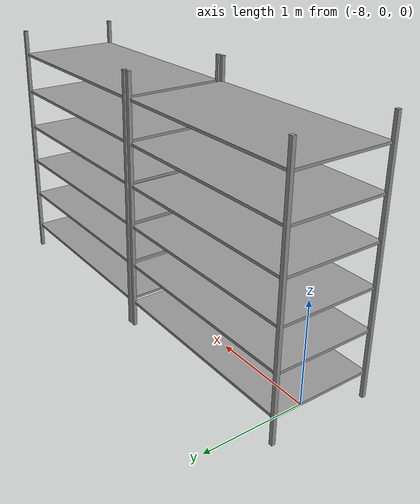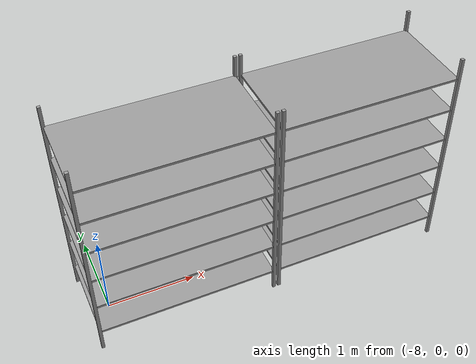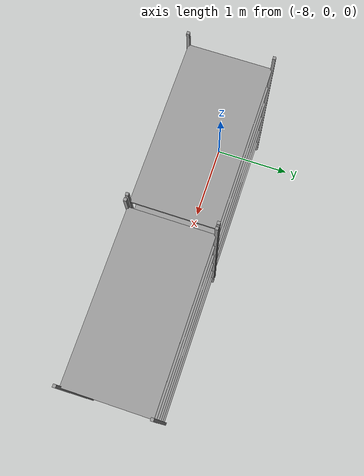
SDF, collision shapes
<sdf version="1.6">
 <model name="shelves">
  <model name="shelf_1">
   <link name="link_1">
    <inertial>
     <mass>1</mass>
     <inertia>
      <ixx>0.166667</ixx>
      <ixy>0</ixy>
      <ixz>0</ixz>
      <iyy>0.166667</iyy>
      <iyz>0</iyz>
      <izz>0.166667</izz>
     </inertia>
    </inertial>
    <visual name="ModelPreview_2::link_1::visual_6">
     <pose>1 0.5 0 0 -0 0</pose>
     <geometry><mesh><uri>model://shelf/model/2-5mDirek.stl</uri><scale>0.001 0.001 0.001</scale></mesh></geometry>
     <material>
      <lighting>1</lighting>
      <script><uri>file://media/materials/scripts/gazebo.material</uri><name>Gazebo/Grey</name></script>
      <shader type="vertex"><normal_map>__default__</normal_map></shader>
      <ambient>0.3 0.3 0.3 1</ambient>
      <diffuse>0.7 0.7 0.7 1</diffuse>
      <specular>0.01 0.01 0.01 1</specular>
      <emissive>0 0 0 1</emissive>
     </material>
    </visual>
    <visual name="ModelPreview_2::link_1::visual_7">
     <pose>-1 0.5 0 0 -0 0</pose>
     <geometry><mesh><uri>model://shelf/model/2-5mDirek.stl</uri><scale>0.001 0.001 0.001</scale></mesh></geometry>
     <material>
      <lighting>1</lighting>
      <script><uri>file://media/materials/scripts/gazebo.material</uri><name>Gazebo/Grey</name></script>
      <shader type="vertex"><normal_map>__default__</normal_map></shader>
      <ambient>0.3 0.3 0.3 1</ambient>
      <diffuse>0.7 0.7 0.7 1</diffuse>
      <specular>0.01 0.01 0.01 1</specular>
      <emissive>0 0 0 1</emissive>
     </material>
    </visual>
    <visual name="ModelPreview_2::link_1::visual_4">
     <pose>0 0 1.85 0 -0 0</pose>
     <geometry><box><size>2 1 0.025</size></box></geometry>
     <material>
      <lighting>1</lighting>
      <script><uri>file://media/materials/scripts/gazebo.material</uri><name>Gazebo/WoodFloor</name></script>
      <shader type="vertex"><normal_map>__default__</normal_map></shader>
      <ambient>0.3 0.3 0.3 1</ambient>
      <diffuse>0.7 0.7 0.7 1</diffuse>
      <specular>0.01 0.01 0.01 1</specular>
      <emissive>0 0 0 1</emissive>
     </material>
    </visual>
    <visual name="ModelPreview_2::link_1::visual_5">
     <pose>0 0 2.25 0 -0 0</pose>
     <geometry><box><size>2 1 0.025</size></box></geometry>
     <material>
      <lighting>1</lighting>
      <script><uri>file://media/materials/scripts/gazebo.material</uri><name>Gazebo/WoodFloor</name></script>
      <shader type="vertex"><normal_map>__default__</normal_map></shader>
      <ambient>0.3 0.3 0.3 1</ambient>
      <diffuse>0.7 0.7 0.7 1</diffuse>
      <specular>0.01 0.01 0.01 1</specular>
      <emissive>0 0 0 1</emissive>
     </material>
    </visual>
    <visual name="ModelPreview_2::link_1::visual_3">
     <pose>0 0 1.45 0 -0 0</pose>
     <geometry><box><size>2 1 0.025</size></box></geometry>
     <material>
      <lighting>1</lighting>
      <script><uri>file://media/materials/scripts/gazebo.material</uri><name>Gazebo/WoodFloor</name></script>
      <shader type="vertex"><normal_map>__default__</normal_map></shader>
      <ambient>0.3 0.3 0.3 1</ambient>
      <diffuse>0.7 0.7 0.7 1</diffuse>
      <specular>0.01 0.01 0.01 1</specular>
      <emissive>0 0 0 1</emissive>
     </material>
    </visual>
    <visual name="ModelPreview_2::link_1::visual_1">
     <pose>0 0 0.65 0 -0 0</pose>
     <geometry><box><size>2 1 0.025</size></box></geometry>
     <material>
      <lighting>1</lighting>
      <script><uri>file://media/materials/scripts/gazebo.material</uri><name>Gazebo/WoodFloor</name></script>
      <shader type="vertex"><normal_map>__default__</normal_map></shader>
      <ambient>0.3 0.3 0.3 1</ambient>
      <diffuse>0.7 0.7 0.7 1</diffuse>
      <specular>0.01 0.01 0.01 1</specular>
      <emissive>0 0 0 1</emissive>
     </material>
    </visual>
    <visual name="visual">
     <pose>0 0 0.25 0 -0 0</pose>
     <geometry><box><size>2 1 0.025</size></box></geometry>
     <material>
      <lighting>1</lighting>
      <script><uri>file://media/materials/scripts/gazebo.material</uri><name>Gazebo/WoodFloor</name></script>
      <shader type="vertex"><normal_map>__default__</normal_map></shader>
      <ambient>0.3 0.3 0.3 1</ambient>
      <diffuse>0.7 0.7 0.7 1</diffuse>
      <specular>0.01 0.01 0.01 1</specular>
      <emissive>0 0 0 1</emissive>
     </material>
    </visual>
    <visual name="ModelPreview_2::link_1::visual_2">
     <pose>0 0 1.05 0 -0 0</pose>
     <geometry><box><size>2 1 0.025</size></box></geometry>
     <material>
      <lighting>1</lighting>
      <script><uri>file://media/materials/scripts/gazebo.material</uri><name>Gazebo/WoodFloor</name></script>
      <shader type="vertex"><normal_map>__default__</normal_map></shader>
      <ambient>0.3 0.3 0.3 1</ambient>
      <diffuse>0.7 0.7 0.7 1</diffuse>
      <specular>0.01 0.01 0.01 1</specular>
      <emissive>0 0 0 1</emissive>
     </material>
    </visual>
    <visual name="ModelPreview_2::link_1::visual_8">
     <pose>1 -0.5 0 0 -0 0</pose>
     <geometry><mesh><uri>model://shelf/model/2-5mDirek.stl</uri><scale>0.001 0.001 0.001</scale></mesh></geometry>
     <material>
      <lighting>1</lighting>
      <script><uri>file://media/materials/scripts/gazebo.material</uri><name>Gazebo/Grey</name></script>
      <shader type="vertex"><normal_map>__default__</normal_map></shader>
      <ambient>0.3 0.3 0.3 1</ambient>
      <diffuse>0.7 0.7 0.7 1</diffuse>
      <specular>0.01 0.01 0.01 1</specular>
      <emissive>0 0 0 1</emissive>
     </material>
    </visual>
    <visual name="ModelPreview_2::link_1::visual_9">
     <pose>-1 -0.5 0 0 -0 0</pose>
     <geometry><mesh><uri>model://shelf/model/2-5mDirek.stl</uri><scale>0.001 0.001 0.001</scale></mesh></geometry>
     <material>
      <lighting>1</lighting>
      <script><uri>file://media/materials/scripts/gazebo.material</uri><name>Gazebo/Grey</name></script>
      <shader type="vertex"><normal_map>__default__</normal_map></shader>
      <ambient>0.3 0.3 0.3 1</ambient>
      <diffuse>0.7 0.7 0.7 1</diffuse>
      <specular>0.01 0.01 0.01 1</specular>
      <emissive>0 0 0 1</emissive>
     </material>
    </visual>
    <collision name="collision_7">
     <pose>1 -0.5 1.25 0 -0 0</pose>
     <geometry><box><size>0.035 0.035 2.5</size></box></geometry>
     <surface>
      <friction>
       <ode><mu>1</mu><mu2>1</mu2><fdir1>0 0 0</fdir1><slip1>0</slip1><slip2>0</slip2></ode>
       <torsional>
        <coefficient>1</coefficient>
        <patch_radius>0</patch_radius>
        <surface_radius>0</surface_radius>
        <use_patch_radius>1</use_patch_radius>
        <ode><slip>0</slip></ode>
       </torsional>
      </friction>
      <bounce><restitution_coefficient>0</restitution_coefficient><threshold>1e+06</threshold></bounce>
      <contact>
       <collide_without_contact>0</collide_without_contact>
       <collide_without_contact_bitmask>1</collide_without_contact_bitmask>
       <collide_bitmask>1</collide_bitmask>
       <ode>
        <soft_cfm>0</soft_cfm>
        <soft_erp>0.2</soft_erp>
        <kp>1e+13</kp>
        <kd>1</kd>
        <max_vel>0.01</max_vel>
        <min_depth>0</min_depth>
       </ode>
       <bullet>
        <split_impulse>1</split_impulse>
        <split_impulse_penetration_threshold>-0.01</split_impulse_penetration_threshold>
        <soft_cfm>0</soft_cfm>
        <soft_erp>0.2</soft_erp>
        <kp>1e+13</kp>
        <kd>1</kd>
       </bullet>
      </contact>
     </surface>
    </collision>
    <collision name="collision_6">
     <pose>1 0.5 1.25 0 -0 0</pose>
     <geometry><box><size>0.035 0.035 2.5</size></box></geometry>
     <surface>
      <friction>
       <ode><mu>1</mu><mu2>1</mu2><fdir1>0 0 0</fdir1><slip1>0</slip1><slip2>0</slip2></ode>
       <torsional>
        <coefficient>1</coefficient>
        <patch_radius>0</patch_radius>
        <surface_radius>0</surface_radius>
        <use_patch_radius>1</use_patch_radius>
        <ode><slip>0</slip></ode>
       </torsional>
      </friction>
      <bounce><restitution_coefficient>0</restitution_coefficient><threshold>1e+06</threshold></bounce>
      <contact>
       <collide_without_contact>0</collide_without_contact>
       <collide_without_contact_bitmask>1</collide_without_contact_bitmask>
       <collide_bitmask>1</collide_bitmask>
       <ode>
        <soft_cfm>0</soft_cfm>
        <soft_erp>0.2</soft_erp>
        <kp>1e+13</kp>
        <kd>1</kd>
        <max_vel>0.01</max_vel>
        <min_depth>0</min_depth>
       </ode>
       <bullet>
        <split_impulse>1</split_impulse>
        <split_impulse_penetration_threshold>-0.01</split_impulse_penetration_threshold>
        <soft_cfm>0</soft_cfm>
        <soft_erp>0.2</soft_erp>
        <kp>1e+13</kp>
        <kd>1</kd>
       </bullet>
      </contact>
     </surface>
    </collision>
    <collision name="collision_2">
     <pose>0 0 1.05 0 -0 0</pose>
     <geometry><box><size>2 1 0.025</size></box></geometry>
     <surface>
      <friction>
       <ode><mu>1</mu><mu2>1</mu2><fdir1>0 0 0</fdir1><slip1>0</slip1><slip2>0</slip2></ode>
       <torsional>
        <coefficient>1</coefficient>
        <patch_radius>0</patch_radius>
        <surface_radius>0</surface_radius>
        <use_patch_radius>1</use_patch_radius>
        <ode><slip>0</slip></ode>
       </torsional>
      </friction>
      <bounce><restitution_coefficient>0</restitution_coefficient><threshold>1e+06</threshold></bounce>
      <contact>
       <collide_without_contact>0</collide_without_contact>
       <collide_without_contact_bitmask>1</collide_without_contact_bitmask>
       <collide_bitmask>1</collide_bitmask>
       <ode>
        <soft_cfm>0</soft_cfm>
        <soft_erp>0.2</soft_erp>
        <kp>1e+13</kp>
        <kd>1</kd>
        <max_vel>0.01</max_vel>
        <min_depth>0</min_depth>
       </ode>
       <bullet>
        <split_impulse>1</split_impulse>
        <split_impulse_penetration_threshold>-0.01</split_impulse_penetration_threshold>
        <soft_cfm>0</soft_cfm>
        <soft_erp>0.2</soft_erp>
        <kp>1e+13</kp>
        <kd>1</kd>
       </bullet>
      </contact>
     </surface>
    </collision>
    <collision name="collision_8">
     <pose>-1 0.5 1.25 0 -0 0</pose>
     <geometry><box><size>0.035 0.035 2.5</size></box></geometry>
     <surface>
      <friction>
       <ode><mu>1</mu><mu2>1</mu2><fdir1>0 0 0</fdir1><slip1>0</slip1><slip2>0</slip2></ode>
       <torsional>
        <coefficient>1</coefficient>
        <patch_radius>0</patch_radius>
        <surface_radius>0</surface_radius>
        <use_patch_radius>1</use_patch_radius>
        <ode><slip>0</slip></ode>
       </torsional>
      </friction>
      <bounce><restitution_coefficient>0</restitution_coefficient><threshold>1e+06</threshold></bounce>
      <contact>
       <collide_without_contact>0</collide_without_contact>
       <collide_without_contact_bitmask>1</collide_without_contact_bitmask>
       <collide_bitmask>1</collide_bitmask>
       <ode>
        <soft_cfm>0</soft_cfm>
        <soft_erp>0.2</soft_erp>
        <kp>1e+13</kp>
        <kd>1</kd>
        <max_vel>0.01</max_vel>
        <min_depth>0</min_depth>
       </ode>
       <bullet>
        <split_impulse>1</split_impulse>
        <split_impulse_penetration_threshold>-0.01</split_impulse_penetration_threshold>
        <soft_cfm>0</soft_cfm>
        <soft_erp>0.2</soft_erp>
        <kp>1e+13</kp>
        <kd>1</kd>
       </bullet>
      </contact>
     </surface>
    </collision>
    <collision name="collision_4">
     <pose>0 0 1.85 0 -0 0</pose>
     <geometry><box><size>2 1 0.025</size></box></geometry>
     <surface>
      <friction>
       <ode><mu>1</mu><mu2>1</mu2><fdir1>0 0 0</fdir1><slip1>0</slip1><slip2>0</slip2></ode>
       <torsional>
        <coefficient>1</coefficient>
        <patch_radius>0</patch_radius>
        <surface_radius>0</surface_radius>
        <use_patch_radius>1</use_patch_radius>
        <ode><slip>0</slip></ode>
       </torsional>
      </friction>
      <bounce><restitution_coefficient>0</restitution_coefficient><threshold>1e+06</threshold></bounce>
      <contact>
       <collide_without_contact>0</collide_without_contact>
       <collide_without_contact_bitmask>1</collide_without_contact_bitmask>
       <collide_bitmask>1</collide_bitmask>
       <ode>
        <soft_cfm>0</soft_cfm>
        <soft_erp>0.2</soft_erp>
        <kp>1e+13</kp>
        <kd>1</kd>
        <max_vel>0.01</max_vel>
        <min_depth>0</min_depth>
       </ode>
       <bullet>
        <split_impulse>1</split_impulse>
        <split_impulse_penetration_threshold>-0.01</split_impulse_penetration_threshold>
        <soft_cfm>0</soft_cfm>
        <soft_erp>0.2</soft_erp>
        <kp>1e+13</kp>
        <kd>1</kd>
       </bullet>
      </contact>
     </surface>
    </collision>
    <collision name="collision_1">
     <pose>0 0 0.65 0 -0 0</pose>
     <geometry><box><size>2 1 0.025</size></box></geometry>
     <surface>
      <friction>
       <ode><mu>1</mu><mu2>1</mu2><fdir1>0 0 0</fdir1><slip1>0</slip1><slip2>0</slip2></ode>
       <torsional>
        <coefficient>1</coefficient>
        <patch_radius>0</patch_radius>
        <surface_radius>0</surface_radius>
        <use_patch_radius>1</use_patch_radius>
        <ode><slip>0</slip></ode>
       </torsional>
      </friction>
      <bounce><restitution_coefficient>0</restitution_coefficient><threshold>1e+06</threshold></bounce>
      <contact>
       <collide_without_contact>0</collide_without_contact>
       <collide_without_contact_bitmask>1</collide_without_contact_bitmask>
       <collide_bitmask>1</collide_bitmask>
       <ode>
        <soft_cfm>0</soft_cfm>
        <soft_erp>0.2</soft_erp>
        <kp>1e+13</kp>
        <kd>1</kd>
        <max_vel>0.01</max_vel>
        <min_depth>0</min_depth>
       </ode>
       <bullet>
        <split_impulse>1</split_impulse>
        <split_impulse_penetration_threshold>-0.01</split_impulse_penetration_threshold>
        <soft_cfm>0</soft_cfm>
        <soft_erp>0.2</soft_erp>
        <kp>1e+13</kp>
        <kd>1</kd>
       </bullet>
      </contact>
     </surface>
    </collision>
    <collision name="collision_3">
     <pose>0 0 1.45 0 -0 0</pose>
     <geometry><box><size>2 1 0.025</size></box></geometry>
     <surface>
      <friction>
       <ode><mu>1</mu><mu2>1</mu2><fdir1>0 0 0</fdir1><slip1>0</slip1><slip2>0</slip2></ode>
       <torsional>
        <coefficient>1</coefficient>
        <patch_radius>0</patch_radius>
        <surface_radius>0</surface_radius>
        <use_patch_radius>1</use_patch_radius>
        <ode><slip>0</slip></ode>
       </torsional>
      </friction>
      <bounce><restitution_coefficient>0</restitution_coefficient><threshold>1e+06</threshold></bounce>
      <contact>
       <collide_without_contact>0</collide_without_contact>
       <collide_without_contact_bitmask>1</collide_without_contact_bitmask>
       <collide_bitmask>1</collide_bitmask>
       <ode>
        <soft_cfm>0</soft_cfm>
        <soft_erp>0.2</soft_erp>
        <kp>1e+13</kp>
        <kd>1</kd>
        <max_vel>0.01</max_vel>
        <min_depth>0</min_depth>
       </ode>
       <bullet>
        <split_impulse>1</split_impulse>
        <split_impulse_penetration_threshold>-0.01</split_impulse_penetration_threshold>
        <soft_cfm>0</soft_cfm>
        <soft_erp>0.2</soft_erp>
        <kp>1e+13</kp>
        <kd>1</kd>
       </bullet>
      </contact>
     </surface>
    </collision>
    <collision name="collision_5">
     <pose>0 0 2.25 0 -0 0</pose>
     <geometry><box><size>2 1 0.025</size></box></geometry>
     <surface>
      <friction>
       <ode><mu>1</mu><mu2>1</mu2><fdir1>0 0 0</fdir1><slip1>0</slip1><slip2>0</slip2></ode>
       <torsional>
        <coefficient>1</coefficient>
        <patch_radius>0</patch_radius>
        <surface_radius>0</surface_radius>
        <use_patch_radius>1</use_patch_radius>
        <ode><slip>0</slip></ode>
       </torsional>
      </friction>
      <bounce><restitution_coefficient>0</restitution_coefficient><threshold>1e+06</threshold></bounce>
      <contact>
       <collide_without_contact>0</collide_without_contact>
       <collide_without_contact_bitmask>1</collide_without_contact_bitmask>
       <collide_bitmask>1</collide_bitmask>
       <ode>
        <soft_cfm>0</soft_cfm>
        <soft_erp>0.2</soft_erp>
        <kp>1e+13</kp>
        <kd>1</kd>
        <max_vel>0.01</max_vel>
        <min_depth>0</min_depth>
       </ode>
       <bullet>
        <split_impulse>1</split_impulse>
        <split_impulse_penetration_threshold>-0.01</split_impulse_penetration_threshold>
        <soft_cfm>0</soft_cfm>
        <soft_erp>0.2</soft_erp>
        <kp>1e+13</kp>
        <kd>1</kd>
       </bullet>
      </contact>
     </surface>
    </collision>
    <collision name="collision">
     <pose>0 0 0.25 0 -0 0</pose>
     <geometry><box><size>2 1 0.025</size></box></geometry>
     <surface>
      <friction>
       <ode><mu>1</mu><mu2>1</mu2><fdir1>0 0 0</fdir1><slip1>0</slip1><slip2>0</slip2></ode>
       <torsional>
        <coefficient>1</coefficient>
        <patch_radius>0</patch_radius>
        <surface_radius>0</surface_radius>
        <use_patch_radius>1</use_patch_radius>
        <ode><slip>0</slip></ode>
       </torsional>
      </friction>
      <bounce><restitution_coefficient>0</restitution_coefficient><threshold>1e+06</threshold></bounce>
      <contact>
       <collide_without_contact>0</collide_without_contact>
       <collide_without_contact_bitmask>1</collide_without_contact_bitmask>
       <collide_bitmask>1</collide_bitmask>
       <ode>
        <soft_cfm>0</soft_cfm>
        <soft_erp>0.2</soft_erp>
        <kp>1e+13</kp>
        <kd>1</kd>
        <max_vel>0.01</max_vel>
        <min_depth>0</min_depth>
       </ode>
       <bullet>
        <split_impulse>1</split_impulse>
        <split_impulse_penetration_threshold>-0.01</split_impulse_penetration_threshold>
        <soft_cfm>0</soft_cfm>
        <soft_erp>0.2</soft_erp>
        <kp>1e+13</kp>
        <kd>1</kd>
       </bullet>
      </contact>
     </surface>
    </collision>
    <collision name="collision_9">
     <pose>-1 -0.5 1.25 0 -0 0</pose>
     <geometry><box><size>0.035 0.035 2.5</size></box></geometry>
     <surface>
      <friction>
       <ode><mu>1</mu><mu2>1</mu2><fdir1>0 0 0</fdir1><slip1>0</slip1><slip2>0</slip2></ode>
       <torsional>
        <coefficient>1</coefficient>
        <patch_radius>0</patch_radius>
        <surface_radius>0</surface_radius>
        <use_patch_radius>1</use_patch_radius>
        <ode><slip>0</slip></ode>
       </torsional>
      </friction>
      <bounce><restitution_coefficient>0</restitution_coefficient><threshold>1e+06</threshold></bounce>
      <contact>
       <collide_without_contact>0</collide_without_contact>
       <collide_without_contact_bitmask>1</collide_without_contact_bitmask>
       <collide_bitmask>1</collide_bitmask>
       <ode>
        <soft_cfm>0</soft_cfm>
        <soft_erp>0.2</soft_erp>
        <kp>1e+13</kp>
        <kd>1</kd>
        <max_vel>0.01</max_vel>
        <min_depth>0</min_depth>
       </ode>
       <bullet>
        <split_impulse>1</split_impulse>
        <split_impulse_penetration_threshold>-0.01</split_impulse_penetration_threshold>
        <soft_cfm>0</soft_cfm>
        <soft_erp>0.2</soft_erp>
        <kp>1e+13</kp>
        <kd>1</kd>
       </bullet>
      </contact>
     </surface>
    </collision>
   </link>
   <static>1</static>
   <pose>-5.1519 0.002003 0 0 -0 0</pose>
  </model>
  <model name="shelf_2">
   <link name="link_1">
    <inertial>
     <mass>1</mass>
     <inertia>
      <ixx>0.166667</ixx>
      <ixy>0</ixy>
      <ixz>0</ixz>
      <iyy>0.166667</iyy>
      <iyz>0</iyz>
      <izz>0.166667</izz>
     </inertia>
    </inertial>
    <visual name="ModelPreview_2::link_1::visual_6">
     <pose>1 0.5 0 0 -0 0</pose>
     <geometry><mesh><uri>model://shelf/model/2-5mDirek.stl</uri><scale>0.001 0.001 0.001</scale></mesh></geometry>
     <material>
      <lighting>1</lighting>
      <script><uri>file://media/materials/scripts/gazebo.material</uri><name>Gazebo/Grey</name></script>
      <shader type="vertex"><normal_map>__default__</normal_map></shader>
      <ambient>0.3 0.3 0.3 1</ambient>
      <diffuse>0.7 0.7 0.7 1</diffuse>
      <specular>0.01 0.01 0.01 1</specular>
      <emissive>0 0 0 1</emissive>
     </material>
    </visual>
    <visual name="ModelPreview_2::link_1::visual_7">
     <pose>-1 0.5 0 0 -0 0</pose>
     <geometry><mesh><uri>model://shelf/model/2-5mDirek.stl</uri><scale>0.001 0.001 0.001</scale></mesh></geometry>
     <material>
      <lighting>1</lighting>
      <script><uri>file://media/materials/scripts/gazebo.material</uri><name>Gazebo/Grey</name></script>
      <shader type="vertex"><normal_map>__default__</normal_map></shader>
      <ambient>0.3 0.3 0.3 1</ambient>
      <diffuse>0.7 0.7 0.7 1</diffuse>
      <specular>0.01 0.01 0.01 1</specular>
      <emissive>0 0 0 1</emissive>
     </material>
    </visual>
    <visual name="ModelPreview_2::link_1::visual_4">
     <pose>0 0 1.85 0 -0 0</pose>
     <geometry><box><size>2 1 0.025</size></box></geometry>
     <material>
      <lighting>1</lighting>
      <script><uri>file://media/materials/scripts/gazebo.material</uri><name>Gazebo/WoodFloor</name></script>
      <shader type="vertex"><normal_map>__default__</normal_map></shader>
      <ambient>0.3 0.3 0.3 1</ambient>
      <diffuse>0.7 0.7 0.7 1</diffuse>
      <specular>0.01 0.01 0.01 1</specular>
      <emissive>0 0 0 1</emissive>
     </material>
    </visual>
    <visual name="ModelPreview_2::link_1::visual_5">
     <pose>0 0 2.25 0 -0 0</pose>
     <geometry><box><size>2 1 0.025</size></box></geometry>
     <material>
      <lighting>1</lighting>
      <script><uri>file://media/materials/scripts/gazebo.material</uri><name>Gazebo/WoodFloor</name></script>
      <shader type="vertex"><normal_map>__default__</normal_map></shader>
      <ambient>0.3 0.3 0.3 1</ambient>
      <diffuse>0.7 0.7 0.7 1</diffuse>
      <specular>0.01 0.01 0.01 1</specular>
      <emissive>0 0 0 1</emissive>
     </material>
    </visual>
    <visual name="ModelPreview_2::link_1::visual_3">
     <pose>0 0 1.45 0 -0 0</pose>
     <geometry><box><size>2 1 0.025</size></box></geometry>
     <material>
      <lighting>1</lighting>
      <script><uri>file://media/materials/scripts/gazebo.material</uri><name>Gazebo/WoodFloor</name></script>
      <shader type="vertex"><normal_map>__default__</normal_map></shader>
      <ambient>0.3 0.3 0.3 1</ambient>
      <diffuse>0.7 0.7 0.7 1</diffuse>
      <specular>0.01 0.01 0.01 1</specular>
      <emissive>0 0 0 1</emissive>
     </material>
    </visual>
    <visual name="ModelPreview_2::link_1::visual_1">
     <pose>0 0 0.65 0 -0 0</pose>
     <geometry><box><size>2 1 0.025</size></box></geometry>
     <material>
      <lighting>1</lighting>
      <script><uri>file://media/materials/scripts/gazebo.material</uri><name>Gazebo/WoodFloor</name></script>
      <shader type="vertex"><normal_map>__default__</normal_map></shader>
      <ambient>0.3 0.3 0.3 1</ambient>
      <diffuse>0.7 0.7 0.7 1</diffuse>
      <specular>0.01 0.01 0.01 1</specular>
      <emissive>0 0 0 1</emissive>
     </material>
    </visual>
    <visual name="visual">
     <pose>0 0 0.25 0 -0 0</pose>
     <geometry><box><size>2 1 0.025</size></box></geometry>
     <material>
      <lighting>1</lighting>
      <script><uri>file://media/materials/scripts/gazebo.material</uri><name>Gazebo/WoodFloor</name></script>
      <shader type="vertex"><normal_map>__default__</normal_map></shader>
      <ambient>0.3 0.3 0.3 1</ambient>
      <diffuse>0.7 0.7 0.7 1</diffuse>
      <specular>0.01 0.01 0.01 1</specular>
      <emissive>0 0 0 1</emissive>
     </material>
    </visual>
    <visual name="ModelPreview_2::link_1::visual_2">
     <pose>0 0 1.05 0 -0 0</pose>
     <geometry><box><size>2 1 0.025</size></box></geometry>
     <material>
      <lighting>1</lighting>
      <script><uri>file://media/materials/scripts/gazebo.material</uri><name>Gazebo/WoodFloor</name></script>
      <shader type="vertex"><normal_map>__default__</normal_map></shader>
      <ambient>0.3 0.3 0.3 1</ambient>
      <diffuse>0.7 0.7 0.7 1</diffuse>
      <specular>0.01 0.01 0.01 1</specular>
      <emissive>0 0 0 1</emissive>
     </material>
    </visual>
    <visual name="ModelPreview_2::link_1::visual_8">
     <pose>1 -0.5 0 0 -0 0</pose>
     <geometry><mesh><uri>model://shelf/model/2-5mDirek.stl</uri><scale>0.001 0.001 0.001</scale></mesh></geometry>
     <material>
      <lighting>1</lighting>
      <script><uri>file://media/materials/scripts/gazebo.material</uri><name>Gazebo/Grey</name></script>
      <shader type="vertex"><normal_map>__default__</normal_map></shader>
      <ambient>0.3 0.3 0.3 1</ambient>
      <diffuse>0.7 0.7 0.7 1</diffuse>
      <specular>0.01 0.01 0.01 1</specular>
      <emissive>0 0 0 1</emissive>
     </material>
    </visual>
    <visual name="ModelPreview_2::link_1::visual_9">
     <pose>-1 -0.5 0 0 -0 0</pose>
     <geometry><mesh><uri>model://shelf/model/2-5mDirek.stl</uri><scale>0.001 0.001 0.001</scale></mesh></geometry>
     <material>
      <lighting>1</lighting>
      <script><uri>file://media/materials/scripts/gazebo.material</uri><name>Gazebo/Grey</name></script>
      <shader type="vertex"><normal_map>__default__</normal_map></shader>
      <ambient>0.3 0.3 0.3 1</ambient>
      <diffuse>0.7 0.7 0.7 1</diffuse>
      <specular>0.01 0.01 0.01 1</specular>
      <emissive>0 0 0 1</emissive>
     </material>
    </visual>
    <collision name="collision_7">
     <pose>1 -0.5 1.25 0 -0 0</pose>
     <geometry><box><size>0.035 0.035 2.5</size></box></geometry>
     <surface>
      <friction>
       <ode><mu>1</mu><mu2>1</mu2><fdir1>0 0 0</fdir1><slip1>0</slip1><slip2>0</slip2></ode>
       <torsional>
        <coefficient>1</coefficient>
        <patch_radius>0</patch_radius>
        <surface_radius>0</surface_radius>
        <use_patch_radius>1</use_patch_radius>
        <ode><slip>0</slip></ode>
       </torsional>
      </friction>
      <bounce><restitution_coefficient>0</restitution_coefficient><threshold>1e+06</threshold></bounce>
      <contact>
       <collide_without_contact>0</collide_without_contact>
       <collide_without_contact_bitmask>1</collide_without_contact_bitmask>
       <collide_bitmask>1</collide_bitmask>
       <ode>
        <soft_cfm>0</soft_cfm>
        <soft_erp>0.2</soft_erp>
        <kp>1e+13</kp>
        <kd>1</kd>
        <max_vel>0.01</max_vel>
        <min_depth>0</min_depth>
       </ode>
       <bullet>
        <split_impulse>1</split_impulse>
        <split_impulse_penetration_threshold>-0.01</split_impulse_penetration_threshold>
        <soft_cfm>0</soft_cfm>
        <soft_erp>0.2</soft_erp>
        <kp>1e+13</kp>
        <kd>1</kd>
       </bullet>
      </contact>
     </surface>
    </collision>
    <collision name="collision_6">
     <pose>1 0.5 1.25 0 -0 0</pose>
     <geometry><box><size>0.035 0.035 2.5</size></box></geometry>
     <surface>
      <friction>
       <ode><mu>1</mu><mu2>1</mu2><fdir1>0 0 0</fdir1><slip1>0</slip1><slip2>0</slip2></ode>
       <torsional>
        <coefficient>1</coefficient>
        <patch_radius>0</patch_radius>
        <surface_radius>0</surface_radius>
        <use_patch_radius>1</use_patch_radius>
        <ode><slip>0</slip></ode>
       </torsional>
      </friction>
      <bounce><restitution_coefficient>0</restitution_coefficient><threshold>1e+06</threshold></bounce>
      <contact>
       <collide_without_contact>0</collide_without_contact>
       <collide_without_contact_bitmask>1</collide_without_contact_bitmask>
       <collide_bitmask>1</collide_bitmask>
       <ode>
        <soft_cfm>0</soft_cfm>
        <soft_erp>0.2</soft_erp>
        <kp>1e+13</kp>
        <kd>1</kd>
        <max_vel>0.01</max_vel>
        <min_depth>0</min_depth>
       </ode>
       <bullet>
        <split_impulse>1</split_impulse>
        <split_impulse_penetration_threshold>-0.01</split_impulse_penetration_threshold>
        <soft_cfm>0</soft_cfm>
        <soft_erp>0.2</soft_erp>
        <kp>1e+13</kp>
        <kd>1</kd>
       </bullet>
      </contact>
     </surface>
    </collision>
    <collision name="collision_2">
     <pose>0 0 1.05 0 -0 0</pose>
     <geometry><box><size>2 1 0.025</size></box></geometry>
     <surface>
      <friction>
       <ode><mu>1</mu><mu2>1</mu2><fdir1>0 0 0</fdir1><slip1>0</slip1><slip2>0</slip2></ode>
       <torsional>
        <coefficient>1</coefficient>
        <patch_radius>0</patch_radius>
        <surface_radius>0</surface_radius>
        <use_patch_radius>1</use_patch_radius>
        <ode><slip>0</slip></ode>
       </torsional>
      </friction>
      <bounce><restitution_coefficient>0</restitution_coefficient><threshold>1e+06</threshold></bounce>
      <contact>
       <collide_without_contact>0</collide_without_contact>
       <collide_without_contact_bitmask>1</collide_without_contact_bitmask>
       <collide_bitmask>1</collide_bitmask>
       <ode>
        <soft_cfm>0</soft_cfm>
        <soft_erp>0.2</soft_erp>
        <kp>1e+13</kp>
        <kd>1</kd>
        <max_vel>0.01</max_vel>
        <min_depth>0</min_depth>
       </ode>
       <bullet>
        <split_impulse>1</split_impulse>
        <split_impulse_penetration_threshold>-0.01</split_impulse_penetration_threshold>
        <soft_cfm>0</soft_cfm>
        <soft_erp>0.2</soft_erp>
        <kp>1e+13</kp>
        <kd>1</kd>
       </bullet>
      </contact>
     </surface>
    </collision>
    <collision name="collision_8">
     <pose>-1 0.5 1.25 0 -0 0</pose>
     <geometry><box><size>0.035 0.035 2.5</size></box></geometry>
     <surface>
      <friction>
       <ode><mu>1</mu><mu2>1</mu2><fdir1>0 0 0</fdir1><slip1>0</slip1><slip2>0</slip2></ode>
       <torsional>
        <coefficient>1</coefficient>
        <patch_radius>0</patch_radius>
        <surface_radius>0</surface_radius>
        <use_patch_radius>1</use_patch_radius>
        <ode><slip>0</slip></ode>
       </torsional>
      </friction>
      <bounce><restitution_coefficient>0</restitution_coefficient><threshold>1e+06</threshold></bounce>
      <contact>
       <collide_without_contact>0</collide_without_contact>
       <collide_without_contact_bitmask>1</collide_without_contact_bitmask>
       <collide_bitmask>1</collide_bitmask>
       <ode>
        <soft_cfm>0</soft_cfm>
        <soft_erp>0.2</soft_erp>
        <kp>1e+13</kp>
        <kd>1</kd>
        <max_vel>0.01</max_vel>
        <min_depth>0</min_depth>
       </ode>
       <bullet>
        <split_impulse>1</split_impulse>
        <split_impulse_penetration_threshold>-0.01</split_impulse_penetration_threshold>
        <soft_cfm>0</soft_cfm>
        <soft_erp>0.2</soft_erp>
        <kp>1e+13</kp>
        <kd>1</kd>
       </bullet>
      </contact>
     </surface>
    </collision>
    <collision name="collision_4">
     <pose>0 0 1.85 0 -0 0</pose>
     <geometry><box><size>2 1 0.025</size></box></geometry>
     <surface>
      <friction>
       <ode><mu>1</mu><mu2>1</mu2><fdir1>0 0 0</fdir1><slip1>0</slip1><slip2>0</slip2></ode>
       <torsional>
        <coefficient>1</coefficient>
        <patch_radius>0</patch_radius>
        <surface_radius>0</surface_radius>
        <use_patch_radius>1</use_patch_radius>
        <ode><slip>0</slip></ode>
       </torsional>
      </friction>
      <bounce><restitution_coefficient>0</restitution_coefficient><threshold>1e+06</threshold></bounce>
      <contact>
       <collide_without_contact>0</collide_without_contact>
       <collide_without_contact_bitmask>1</collide_without_contact_bitmask>
       <collide_bitmask>1</collide_bitmask>
       <ode>
        <soft_cfm>0</soft_cfm>
        <soft_erp>0.2</soft_erp>
        <kp>1e+13</kp>
        <kd>1</kd>
        <max_vel>0.01</max_vel>
        <min_depth>0</min_depth>
       </ode>
       <bullet>
        <split_impulse>1</split_impulse>
        <split_impulse_penetration_threshold>-0.01</split_impulse_penetration_threshold>
        <soft_cfm>0</soft_cfm>
        <soft_erp>0.2</soft_erp>
        <kp>1e+13</kp>
        <kd>1</kd>
       </bullet>
      </contact>
     </surface>
    </collision>
    <collision name="collision_1">
     <pose>0 0 0.65 0 -0 0</pose>
     <geometry><box><size>2 1 0.025</size></box></geometry>
     <surface>
      <friction>
       <ode><mu>1</mu><mu2>1</mu2><fdir1>0 0 0</fdir1><slip1>0</slip1><slip2>0</slip2></ode>
       <torsional>
        <coefficient>1</coefficient>
        <patch_radius>0</patch_radius>
        <surface_radius>0</surface_radius>
        <use_patch_radius>1</use_patch_radius>
        <ode><slip>0</slip></ode>
       </torsional>
      </friction>
      <bounce><restitution_coefficient>0</restitution_coefficient><threshold>1e+06</threshold></bounce>
      <contact>
       <collide_without_contact>0</collide_without_contact>
       <collide_without_contact_bitmask>1</collide_without_contact_bitmask>
       <collide_bitmask>1</collide_bitmask>
       <ode>
        <soft_cfm>0</soft_cfm>
        <soft_erp>0.2</soft_erp>
        <kp>1e+13</kp>
        <kd>1</kd>
        <max_vel>0.01</max_vel>
        <min_depth>0</min_depth>
       </ode>
       <bullet>
        <split_impulse>1</split_impulse>
        <split_impulse_penetration_threshold>-0.01</split_impulse_penetration_threshold>
        <soft_cfm>0</soft_cfm>
        <soft_erp>0.2</soft_erp>
        <kp>1e+13</kp>
        <kd>1</kd>
       </bullet>
      </contact>
     </surface>
    </collision>
    <collision name="collision_3">
     <pose>0 0 1.45 0 -0 0</pose>
     <geometry><box><size>2 1 0.025</size></box></geometry>
     <surface>
      <friction>
       <ode><mu>1</mu><mu2>1</mu2><fdir1>0 0 0</fdir1><slip1>0</slip1><slip2>0</slip2></ode>
       <torsional>
        <coefficient>1</coefficient>
        <patch_radius>0</patch_radius>
        <surface_radius>0</surface_radius>
        <use_patch_radius>1</use_patch_radius>
        <ode><slip>0</slip></ode>
       </torsional>
      </friction>
      <bounce><restitution_coefficient>0</restitution_coefficient><threshold>1e+06</threshold></bounce>
      <contact>
       <collide_without_contact>0</collide_without_contact>
       <collide_without_contact_bitmask>1</collide_without_contact_bitmask>
       <collide_bitmask>1</collide_bitmask>
       <ode>
        <soft_cfm>0</soft_cfm>
        <soft_erp>0.2</soft_erp>
        <kp>1e+13</kp>
        <kd>1</kd>
        <max_vel>0.01</max_vel>
        <min_depth>0</min_depth>
       </ode>
       <bullet>
        <split_impulse>1</split_impulse>
        <split_impulse_penetration_threshold>-0.01</split_impulse_penetration_threshold>
        <soft_cfm>0</soft_cfm>
        <soft_erp>0.2</soft_erp>
        <kp>1e+13</kp>
        <kd>1</kd>
       </bullet>
      </contact>
     </surface>
    </collision>
    <collision name="collision_5">
     <pose>0 0 2.25 0 -0 0</pose>
     <geometry><box><size>2 1 0.025</size></box></geometry>
     <surface>
      <friction>
       <ode><mu>1</mu><mu2>1</mu2><fdir1>0 0 0</fdir1><slip1>0</slip1><slip2>0</slip2></ode>
       <torsional>
        <coefficient>1</coefficient>
        <patch_radius>0</patch_radius>
        <surface_radius>0</surface_radius>
        <use_patch_radius>1</use_patch_radius>
        <ode><slip>0</slip></ode>
       </torsional>
      </friction>
      <bounce><restitution_coefficient>0</restitution_coefficient><threshold>1e+06</threshold></bounce>
      <contact>
       <collide_without_contact>0</collide_without_contact>
       <collide_without_contact_bitmask>1</collide_without_contact_bitmask>
       <collide_bitmask>1</collide_bitmask>
       <ode>
        <soft_cfm>0</soft_cfm>
        <soft_erp>0.2</soft_erp>
        <kp>1e+13</kp>
        <kd>1</kd>
        <max_vel>0.01</max_vel>
        <min_depth>0</min_depth>
       </ode>
       <bullet>
        <split_impulse>1</split_impulse>
        <split_impulse_penetration_threshold>-0.01</split_impulse_penetration_threshold>
        <soft_cfm>0</soft_cfm>
        <soft_erp>0.2</soft_erp>
        <kp>1e+13</kp>
        <kd>1</kd>
       </bullet>
      </contact>
     </surface>
    </collision>
    <collision name="collision">
     <pose>0 0 0.25 0 -0 0</pose>
     <geometry><box><size>2 1 0.025</size></box></geometry>
     <surface>
      <friction>
       <ode><mu>1</mu><mu2>1</mu2><fdir1>0 0 0</fdir1><slip1>0</slip1><slip2>0</slip2></ode>
       <torsional>
        <coefficient>1</coefficient>
        <patch_radius>0</patch_radius>
        <surface_radius>0</surface_radius>
        <use_patch_radius>1</use_patch_radius>
        <ode><slip>0</slip></ode>
       </torsional>
      </friction>
      <bounce><restitution_coefficient>0</restitution_coefficient><threshold>1e+06</threshold></bounce>
      <contact>
       <collide_without_contact>0</collide_without_contact>
       <collide_without_contact_bitmask>1</collide_without_contact_bitmask>
       <collide_bitmask>1</collide_bitmask>
       <ode>
        <soft_cfm>0</soft_cfm>
        <soft_erp>0.2</soft_erp>
        <kp>1e+13</kp>
        <kd>1</kd>
        <max_vel>0.01</max_vel>
        <min_depth>0</min_depth>
       </ode>
       <bullet>
        <split_impulse>1</split_impulse>
        <split_impulse_penetration_threshold>-0.01</split_impulse_penetration_threshold>
        <soft_cfm>0</soft_cfm>
        <soft_erp>0.2</soft_erp>
        <kp>1e+13</kp>
        <kd>1</kd>
       </bullet>
      </contact>
     </surface>
    </collision>
    <collision name="collision_9">
     <pose>-1 -0.5 1.25 0 -0 0</pose>
     <geometry><box><size>0.035 0.035 2.5</size></box></geometry>
     <surface>
      <friction>
       <ode><mu>1</mu><mu2>1</mu2><fdir1>0 0 0</fdir1><slip1>0</slip1><slip2>0</slip2></ode>
       <torsional>
        <coefficient>1</coefficient>
        <patch_radius>0</patch_radius>
        <surface_radius>0</surface_radius>
        <use_patch_radius>1</use_patch_radius>
        <ode><slip>0</slip></ode>
       </torsional>
      </friction>
      <bounce><restitution_coefficient>0</restitution_coefficient><threshold>1e+06</threshold></bounce>
      <contact>
       <collide_without_contact>0</collide_without_contact>
       <collide_without_contact_bitmask>1</collide_without_contact_bitmask>
       <collide_bitmask>1</collide_bitmask>
       <ode>
        <soft_cfm>0</soft_cfm>
        <soft_erp>0.2</soft_erp>
        <kp>1e+13</kp>
        <kd>1</kd>
        <max_vel>0.01</max_vel>
        <min_depth>0</min_depth>
       </ode>
       <bullet>
        <split_impulse>1</split_impulse>
        <split_impulse_penetration_threshold>-0.01</split_impulse_penetration_threshold>
        <soft_cfm>0</soft_cfm>
        <soft_erp>0.2</soft_erp>
        <kp>1e+13</kp>
        <kd>1</kd>
       </bullet>
      </contact>
     </surface>
    </collision>
   </link>
   <static>1</static>
   <pose>-7.21359 0.00066 -0 0 -0 0</pose>
  </model>
  <static>1</static>
 </model>
</sdf>
